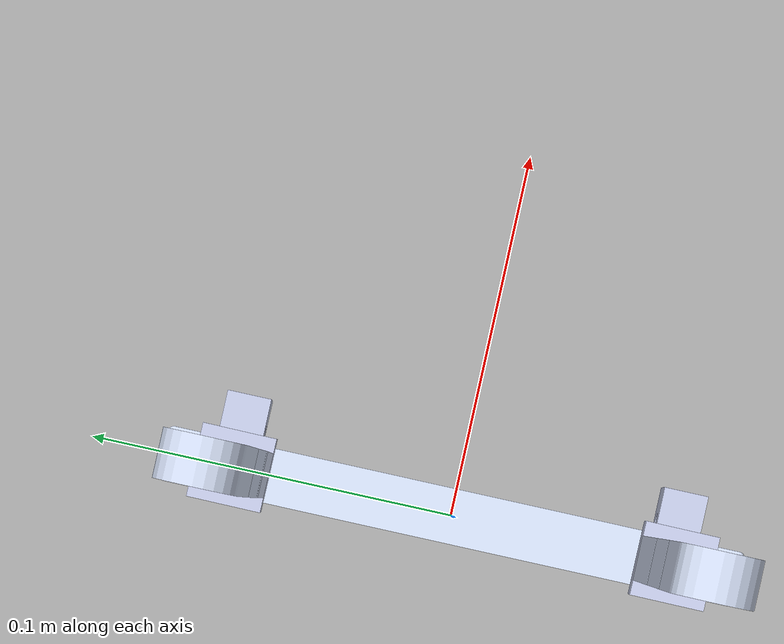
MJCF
<mujoco model="two_finger_gripper">
  <compiler angle="radian" coordinate="local"/>
  <option timestep="0.001"/>

  <asset>
    <mesh name="base_link_mesh" file="meshes/base_link.STL"/>
    <mesh name="right_side_mesh" file="meshes/right_side.STL"/>
    <mesh name="right_side_pitch_mesh" file="meshes/right_side.STL"/>
    <mesh name="R1_mesh" file="meshes/R1.STL"/>
    <mesh name="R2_mesh" file="meshes/R2.STL"/>
    <mesh name="R3_mesh" file="meshes/R3.STL"/>
    <mesh name="left_side_mesh" file="meshes/left_side.STL"/>
    <mesh name="left_side_pitch_mesh" file="meshes/left_side.STL"/>
    <mesh name="L1_mesh" file="meshes/L1.STL"/>
    <mesh name="L2_mesh" file="meshes/L2.STL"/>
    <mesh name="L3_mesh" file="meshes/L3.STL"/>
  </asset>

  <worldbody>
    <!-- base_link is root -->
    <body name="base_link" pos="0 0 0">
      <inertial
        pos="8.81354273374553E-09 -4.22886858600738E-07 -1.70898026224046E-08"
        mass="0.187618707682634"
        diaginertia="0.000403340846571004 1.77436072317056E-05 0.000392747111510324"/>
      <geom
        type="mesh"
        mesh="base_link_mesh"
        pos="0 0 0"
        euler="0 0 0"
        rgba="0.866666666666667 0.909803921568627 1 1"/>

      <!-- right_side -->
      <body name="right_side" pos="0 0.06005 0.015" euler="0 0 0">
        <inertial
          pos="2.08166817117217E-17 2.8652322981988E-08 0.00999999876379252"
          euler="1.5708 0 -1.5828"
          mass="0.00400455448945673"
          diaginertia="1.92052268591215E-07 2.10355619255483E-07 2.97791048750068E-07"/>
        <joint
          name="right_base_joint"
          type="hinge"
          axis="0 0 1"
          range="-0.5235 0.5235"/>
        <geom
          type="mesh"
          mesh="right_side_mesh"
          pos="0 0 0"
          euler="1.5708 0 -1.5828"
          rgba="0.792156862745098 0.819607843137255 0.933333333333333 1"/>

        <!-- right_side_pitch -->
        <body name="right_side_pitch" pos="0 0 0.025" euler="0 0 0">
          <inertial
            pos="0 2.86523228808862E-08 0"
            euler="0 0 -1.577"
            mass="0.00400455448945672"
            diaginertia="1.92052268591215E-07 2.10355619255482E-07 2.97791048750067E-07"/>
          <joint
            name="right_base_pitch_joint"
            type="hinge"
            axis="0 1 0"
            range="-0.5235 0.5235"/>
          <geom
            type="mesh"
            mesh="right_side_pitch_mesh"
            pos="-0.01 0 0"
            euler="0 0 -1.577"
            rgba="0.792156862745098 0.819607843137255 0.933333333333333 1"/>

          <body name="R1" pos="0 0 0.009" euler="0 0 0">
            <inertial
              pos="1.26851654180804E-17 2.28983498828939E-16 0.0350000000000001"
              euler="1.57 0 0"
              mass="0.0498429795113518"
              diaginertia="2.68907785888968E-05 2.31661213105638E-06 2.57685006174922E-05"/>
            <joint
              name="R1_joint"
              type="hinge"
              axis="1 0 0"
              range="-1.57 0.5235"/>
            <geom
              type="mesh"
              mesh="R1_mesh"
              pos="0 0 0"
              euler="1.57 0 0"
              rgba="0.866666666666667 0.909803921568627 1 1"/>

            <body name="R2" pos="0 0 0.07" euler="0 0 0">
              <inertial
                pos="-4.56796454828545E-10 0 0.0296521459141245"
                euler="1.4 0 0"
                mass="0.0433629505400265"
                diaginertia="1.82012341198528E-05 2.37316309026694E-06 1.68668845317301E-05"/>
              <joint
                name="R2_joint"
                type="hinge"
                axis="1 0 0"
                range="-0.5235 2"/>
              <geom
                type="mesh"
                mesh="R2_mesh"
                pos="0 0 0"
                euler="1.4 0 0"
                rgba="0.866666666666667 0.909803921568627 1 1"/>

              <body name="R3" pos="0 0 0.06" euler="0 0 0">
                <inertial
                  pos="-1.69162753791731E-10 0 0.0283253438069827"
                  euler="1.25 0 0"
                  mass="0.0429708583079173"
                  diaginertia="1.75254049269463E-05 3.20880478988122E-06 1.53469520450817E-05"/>
                <joint
                  name="R3_joint"
                  type="hinge"
                  axis="1 0 0"
                  range="-0.5235 1.57"/>
                <geom
                  type="mesh"
                  mesh="R3_mesh"
                  pos="0 0.001 0"
                  euler="1.25 0 0"
                  rgba="0.866666666666667 0.909803921568627 1 1"/>
              </body>
            </body>
          </body>
        </body>
      </body>

      <!-- left_side -->
      <body name="left_side" pos="0 -0.060046 0.015" euler="0 0 0">
        <inertial
          pos="0 2.86523228808862E-08 0.00999999876379255"
          euler="1.5708 0 -1.577"
          mass="0.00400455448945672"
          diaginertia="1.92052268591215E-07 2.10355619255482E-07 2.97791048750067E-07"/>
        <joint
          name="left_base_yaw_joint"
          type="hinge"
          axis="0 0 1"
          range="-0.5235 0.5235"/>
        <geom
          type="mesh"
          mesh="left_side_mesh"
          pos="0 0 0"
          euler="1.5708 0 -1.577"
          rgba="0.792156862745098 0.819607843137255 0.933333333333333 1"/>

        <!-- left_side_pitch -->
        <body name="left_side_pitch" pos="0 0 0.025" euler="0 0 0">
          <inertial
            pos="0 2.86523228808862E-08 0"
            euler="0 0 -1.577"
            mass="0.00400455448945672"
            diaginertia="1.92052268591215E-07 2.10355619255482E-07 2.97791048750067E-07"/>
          <joint
            name="left_base_pitch_joint"
            type="hinge"
            axis="0 1 0"
            range="-0.5235 0.5235"/>
          <geom
            type="mesh"
            mesh="left_side_pitch_mesh"
            pos="-0.01 0 0"
            euler="0 0 -1.577"
            rgba="0.792156862745098 0.819607843137255 0.933333333333333 1"/>

          <body name="L1" pos="0 0 0.009" euler="0 0 0">
            <inertial
              pos="-4.56040182505134E-10 0 0.0350000000000008"
              euler="1.57 0 0"
              mass="0.0498429374208329"
              diaginertia="2.68907345933772E-05 2.31660840247375E-06 2.57684595575646E-05"/>
            <joint
              name="L1_joint"
              type="hinge"
              axis="1 0 0"
              range="-0.5235 1.57"/>
            <geom
              type="mesh"
              mesh="L1_mesh"
              pos="0 0 0"
              euler="1.57 0 0"
              rgba="0.866666666666667 0.909803921568627 1 1"/>

            <body name="L2" pos="0 0 0.07" euler="0 0 0">
              <inertial
                pos="0 0 0.035"
                euler="1.57 0 0"
                mass="0.0433629505400265"
                diaginertia="1.82012341198528E-05 2.02284897334824E-06 1.72171986486488E-05"/>
              <joint
                name="L2_joint"
                type="hinge"
                axis="1 0 0"
                range="-2 1.57"/>
              <geom
                type="mesh"
                mesh="L2_mesh"
                pos="0 0 0"
                euler="1.57 0 0"
                rgba="0.866666666666667 0.909803921568627 1 1"/>

              <body name="L3" pos="0 0 0.06" euler="0 0 0">
                <inertial
                  pos="-2.66025734427244E-10 0 0.029"
                  euler="1.57 0 0"
                  mass="0.0429708569563452"
                  diaginertia="1.75254039654221E-05 1.93413163301078E-06 1.66216242182399E-05"/>
                <joint
                  name="L3_joint"
                  type="hinge"
                  axis="1 0 0"
                  range="-1.57 0.5235"/>
                <geom
                  type="mesh"
                  mesh="L3_mesh"
                  pos="0 0 0"
                  euler="1.57 0 0"
                  rgba="0.866666666666667 0.909803921568627 1 1"/>
              </body>
            </body>
          </body>
        </body>
      </body>
    </body>
  </worldbody>

  <actuator>
    <position name="right_base_joint_act"       joint="right_base_joint"       kp="10" kv="0.5"/>
    <position name="right_base_pitch_joint_act" joint="right_base_pitch_joint" kp="10" kv="0.5"/>
    <position name="R1_joint_act"               joint="R1_joint"               kp="10" kv="0.5"/>
    <position name="R2_joint_act"               joint="R2_joint"               kp="10" kv="0.5"/>
    <position name="R3_joint_act"               joint="R3_joint"               kp="10" kv="0.5"/>
    <position name="left_base_yaw_joint_act"    joint="left_base_yaw_joint"    kp="10" kv="0.5"/>
    <position name="left_base_pitch_joint_act"  joint="left_base_pitch_joint"  kp="10" kv="0.5"/>
    <position name="L1_joint_act"               joint="L1_joint"               kp="10" kv="0.5"/>
    <position name="L2_joint_act"               joint="L2_joint"               kp="10" kv="0.5"/>
    <position name="L3_joint_act"               joint="L3_joint"               kp="10" kv="0.5"/>
  </actuator>
</mujoco>
